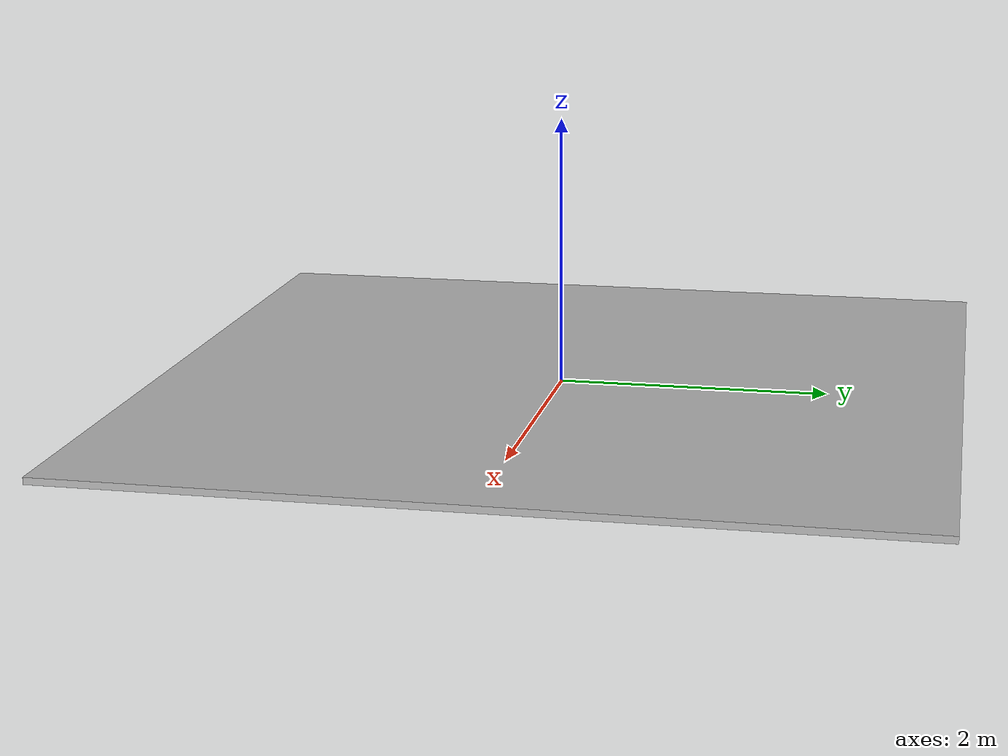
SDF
<?xml version='1.0'?>
<sdf version='1.6'>
  <model name="left_curve_r300_a90_00">
      <static>true</static>
      <link name='link'>
        <collision name='collision'>
          <geometry>
         <box>
            <size>6 6 0.05</size>
          </box>
          </geometry>
          <surface>
            <friction>
              <ode>
                <mu>100</mu>
                <mu2>50</mu2>
              </ode>
            </friction>
          </surface>
        </collision>
        <visual name='visual'>
          <cast_shadows>0</cast_shadows>
          <geometry>
         <box>
            <size>6 6 0.05</size>
          </box>
          </geometry>
          <material>
            <script>
              <uri>model://left_curve_r300_a90_00/materials/scripts</uri>
              <uri>model://left_curve_r300_a90_00/materials/textures/</uri>
              <name>left_curve_r300_a90_00/Image</name>
            </script>
          </material>
        </visual>
      </link>
  </model>
</sdf>
